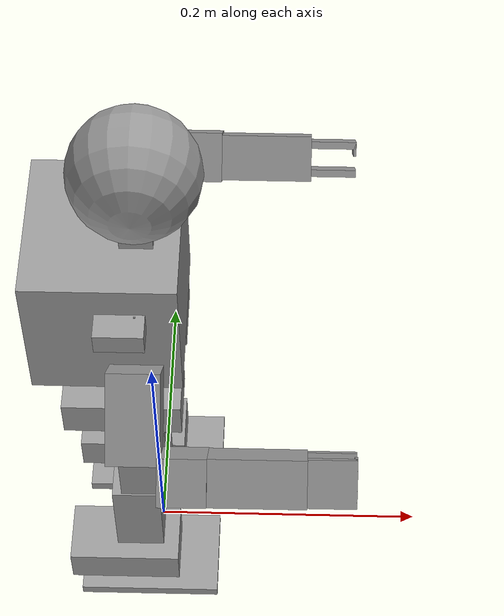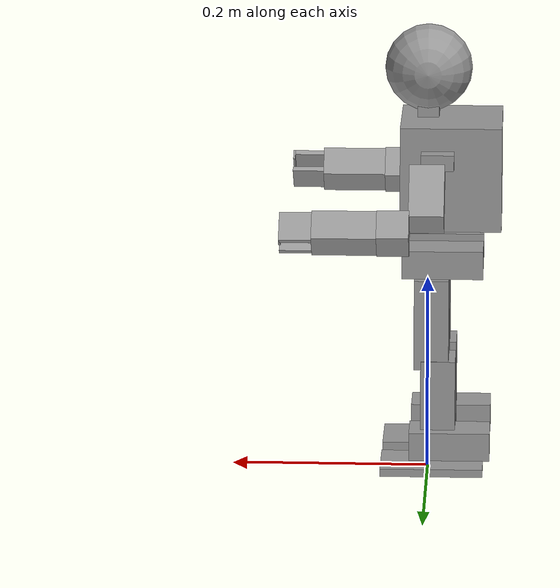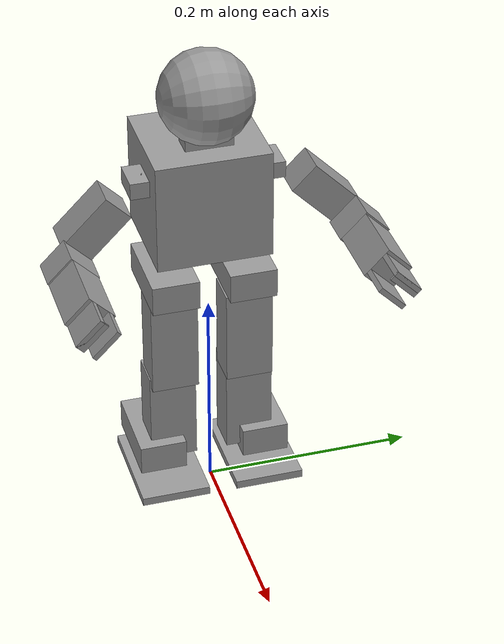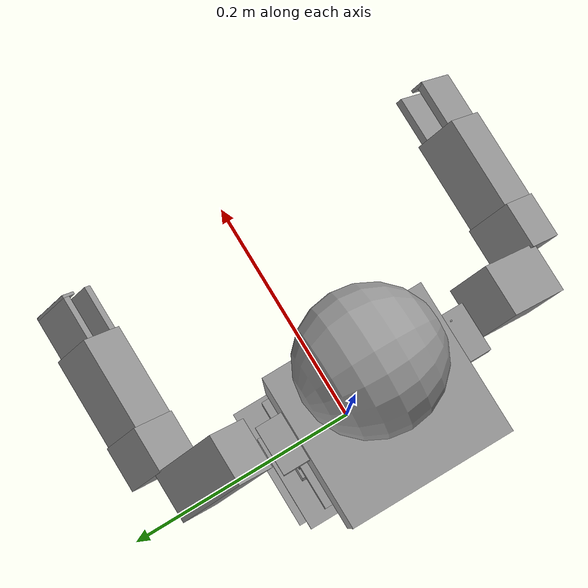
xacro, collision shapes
<?xml version="1.0"?>

<robot name="robotis_op2" xmlns:xacro="http://www.ros.org/wiki/xacro">

  <xacro:include filename="$(find robotis_op_description)/urdf/robotis_op_simple_mesh_visual_geoms.urdf.xacro" />

  <xacro:include filename="$(find robotis_op_description)/urdf/robotis_op_primitive_collision_geoms.urdf.xacro" />

  <xacro:include filename="$(find robotis_op_description)/urdf/helper_macros.urdf.xacro" />

  <xacro:include filename="$(find robotis_op_description)/urdf/materials.xacro" />

  <xacro:include filename="$(find robotis_op_description)/urdf/arm/robotis_op_arm.urdf.xacro" />
  <xacro:include filename="$(find robotis_op_description)/urdf/torso/robotis_op_torso.urdf.xacro" />
  <xacro:include filename="$(find robotis_op_description)/urdf/leg/robotis_op_leg.urdf.xacro" />
  <xacro:include filename="$(find robotis_op_description)/urdf/head/robotis_op_head.urdf.xacro" />

  <xacro:macro name="robotis_op_macro">

    <robotis_op_torso_macro />
    <robotis_op_arm_macro />
    <robotis_op_head_macro />
    <robotis_op_leg_macro />

    <gazebo>
      <plugin name="gazebo_ros_control" filename="libgazebo_ros_control.so">
        <robotNamespace>robotis_op</robotNamespace>
      </plugin>
    </gazebo>
  </xacro:macro>

  <robotis_op_macro />
</robot>

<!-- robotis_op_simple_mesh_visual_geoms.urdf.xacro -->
<robot name="robotis_op2" xmlns:xacro="http://www.ros.org/wiki/xacro">

  <xacro:include filename="$(find robotis_op_description)/urdf/constants.xacro" />

  <xacro:include filename="$(find robotis_op_description)/urdf/head/robotis_op_head_simple_mesh_visual_geoms.urdf.xacro" />
  <xacro:include filename="$(find robotis_op_description)/urdf/leg/robotis_op_leg_simple_mesh_visual_geoms.urdf.xacro" />
  <xacro:include filename="$(find robotis_op_description)/urdf/arm/robotis_op_arm_simple_mesh_visual_geoms.urdf.xacro" />
  <xacro:include filename="$(find robotis_op_description)/urdf/torso/robotis_op_torso_simple_mesh_visual_geoms.urdf.xacro" />

</robot>

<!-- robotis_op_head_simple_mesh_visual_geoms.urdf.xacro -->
<robot  name="robotis_op2" xmlns:xacro="http://www.ros.org/wiki/xacro">

<xacro:macro name="neck_visual_geom_macro">
    <visual>
      <origin xyz="0 0 0" rpy="0 0 0" />
      <geometry>
        <mesh filename="package://robotis_op_description/meshes/neck.STL"  scale="1 1 1"/>
      </geometry>
      <material name="grey"/>
    </visual>
</xacro:macro>

<xacro:macro name="head_visual_geom_macro">
    <visual>
      <origin xyz="0 0 0" rpy="0 0 0" />
      <geometry>
        <mesh filename="package://robotis_op_description/meshes/head.STL"  scale="1 1 1"/>
      </geometry>
      <material name="grey"/>
    </visual>
</xacro:macro>

<xacro:macro name="pmdcamboard_geom_macro">
</xacro:macro>

</robot>

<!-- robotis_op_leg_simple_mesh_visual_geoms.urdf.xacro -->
<robot  name="robotis_op2" xmlns:xacro="http://www.ros.org/wiki/xacro">

<xacro:macro name="pelvis_l_visual_geom_macro">
    <visual>
      <origin xyz="0 0 0" rpy="0 0 0" />
      <geometry>
        <mesh filename="package://robotis_op_description/meshes/pelvis_l.STL"  scale="1 1 1"/>
      </geometry>
       <material name="grey"/>
    </visual>
</xacro:macro>

<xacro:macro name="thigh1_l_visual_geom_macro">
    <visual>
      <origin xyz="0 0 0" rpy="0 0 0" />
      <geometry>
        <mesh filename="package://robotis_op_description/meshes/thigh1_l.STL"  scale="1 1 1"/>
      </geometry>
       <material name="grey"/>
    </visual>
</xacro:macro>

<xacro:macro name="thigh2_l_visual_geom_macro">
    <visual>
      <origin xyz="0 0 0" rpy="0 0 0" />
      <geometry>
        <mesh filename="package://robotis_op_description/meshes/thigh2_l.STL"  scale="1 1 1"/>
      </geometry>
       <material name="grey"/>
    </visual>
</xacro:macro>

<xacro:macro name="tibia_l_visual_geom_macro">
    <visual>
      <origin xyz="0 0 0" rpy="0 0 0" />
      <geometry>
        <mesh filename="package://robotis_op_description/meshes/tibia_l.STL"  scale="1 1 1"/>
      </geometry>
       <material name="grey"/>
    </visual>
</xacro:macro>

<xacro:macro name="ankle1_l_visual_geom_macro">
    <visual>
      <origin xyz="0 0 0" rpy="0 0 0" />
      <geometry>
        <mesh filename="package://robotis_op_description/meshes/ankle1_l.STL"  scale="1 1 1"/>
      </geometry>
       <material name="grey"/>
    </visual>
</xacro:macro>

<xacro:macro name="ankle2_l_visual_geom_macro">
    <visual>
      <origin xyz="0 0 0" rpy="0 0 0" />
      <geometry>
        <mesh filename="package://robotis_op_description/meshes/ankle2_l.STL"  scale="1 1 1"/>
      </geometry>
       <material name="grey"/>
    </visual>
</xacro:macro>

<xacro:macro name="pelvis_r_visual_geom_macro">
    <visual>
      <origin xyz="0 0 0" rpy="0 0 0" />
      <geometry>
        <mesh filename="package://robotis_op_description/meshes/pelvis_r.STL"  scale="1 1 1"/>
      </geometry>
       <material name="grey"/>
    </visual>
</xacro:macro>

<xacro:macro name="thigh1_r_visual_geom_macro">
    <visual>
      <origin xyz="0 0 0" rpy="0 0 0" />
      <geometry>
        <mesh filename="package://robotis_op_description/meshes/thigh1_r.STL"  scale="1 1 1"/>
      </geometry>
       <material name="grey"/>
    </visual>
</xacro:macro>

<xacro:macro name="thigh2_r_visual_geom_macro">
    <visual>
      <origin xyz="0 0 0" rpy="0 0 0" />
      <geometry>
        <mesh filename="package://robotis_op_description/meshes/thigh2_r.STL"  scale="1 1 1"/>
      </geometry>
       <material name="grey"/>
    </visual>
</xacro:macro>

<xacro:macro name="tibia_r_visual_geom_macro">
    <visual>
      <origin xyz="0 0 0" rpy="0 0 0" />
      <geometry>
        <mesh filename="package://robotis_op_description/meshes/tibia_r.STL"  scale="1 1 1"/>
      </geometry>
       <material name="grey"/>
    </visual>
</xacro:macro>

<xacro:macro name="ankle1_r_visual_geom_macro">
    <visual>
      <origin xyz="0 0 0" rpy="0 0 0" />
      <geometry>
        <mesh filename="package://robotis_op_description/meshes/ankle1_r.STL"  scale="1 1 1"/>
      </geometry>
       <material name="grey"/>
    </visual>
</xacro:macro>

<xacro:macro name="ankle2_r_visual_geom_macro">
    <visual>
      <origin xyz="0 0 0" rpy="0 0 0" />
      <geometry>
        <mesh filename="package://robotis_op_description/meshes/ankle2_r.STL"  scale="1 1 1"/>
      </geometry>
       <material name="grey"/>
    </visual>
</xacro:macro>

</robot>

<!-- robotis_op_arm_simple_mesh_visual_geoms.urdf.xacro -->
<robot  name="robotis_op2" xmlns:xacro="http://www.ros.org/wiki/xacro">

<xacro:macro name="back_l_visual_geom_macro">
    <visual>
      <origin xyz="0.0 0.0 0.0" rpy="0 0 0" />
      <geometry>
        <box size="0.001 0.001 0.001"  scale="1 1 1"/>
      </geometry>
      <material name="grey"/>
    </visual>
</xacro:macro>

<xacro:macro name="shoulder_l_visual_geom_macro">
    <visual>
      <origin xyz="0 0 0" rpy="0 0 0" />
      <geometry>
        <mesh filename="package://robotis_op_description/meshes/shoulder_l.STL"  scale="1 1 1"/>
      </geometry>
      <material name="grey"/>
    </visual>
</xacro:macro>

<xacro:macro name="arm_high_l_visual_geom_macro">
    <visual>
      <origin xyz="0 0 0" rpy="0 0 0" />
      <geometry>
        <mesh filename="package://robotis_op_description/meshes/arm_high_l.STL"  scale="1 1 1"/>
      </geometry>
      <material name="grey"/>
    </visual>
</xacro:macro>

<xacro:macro name="arm_low_l_visual_geom_macro">
    <visual>
      <origin xyz="0.016 0.016 0" rpy="0 0 0" />
      <geometry>
        <box size="0.032 0.032 0.035" />
      </geometry>
      <material name="grey"/>
    </visual>
</xacro:macro>

<xacro:macro name="arm_gripper_fix_l_visual_geom_macro">
    <visual>
      <origin xyz="0.016 0 0" rpy="0 0 0" />
      <geometry>
        <box size="0.064 0.032 0.032" />
      </geometry>
       <material name="grey"/>
    </visual>
</xacro:macro>

<xacro:macro name="arm_gripper_fix_dummy_l_visual_geom_macro">
    <visual>
      <origin xyz="0 0 0" rpy="0 0 0" />
      <geometry>
        <box size="0.032 0.005 0.032" />
      </geometry>
       <material name="grey"/>
    </visual>
</xacro:macro>

<xacro:macro name="arm_gripper_mov_l_visual_geom_macro">
    <visual name="VIS_MP_ARM_GRIPPER_MOV_L">
      <origin xyz="0.016 0 0" rpy="0 0 0" />
      <geometry>
        <box size="0.032 0.005 0.032" />
      </geometry>
       <material name="grey"/>
    </visual>
    <visual name="VIS_MP_ARM_GRIPPER_MOV_EXT_L">
      <origin xyz="0.031 -0.0025 0" rpy="0 0 0" />
      <geometry>
        <box size="0.002 0.01 0.032" />
      </geometry>
       <material name="grey"/>
    </visual>
</xacro:macro>

<xacro:macro name="back_r_visual_geom_macro">
    <visual>
      <origin xyz="0.0 0.0 0.0" rpy="0 0 0" />
      <geometry>
        <box size="0.001 0.001 0.001" />
      </geometry>
       <material name="grey"/>
    </visual>
</xacro:macro>

<xacro:macro name="shoulder_r_visual_geom_macro">
    <visual>
      <origin xyz="0 0 0" rpy="0 0 0" />
      <geometry>
        <mesh filename="package://robotis_op_description/meshes/shoulder_r.STL"  scale="1 1 1"/>
      </geometry>
       <material name="grey"/>
    </visual>
</xacro:macro>

<xacro:macro name="arm_high_r_visual_geom_macro">
    <visual>
      <origin xyz="0 0 0" rpy="0 0 0" />
      <geometry>
        <mesh filename="package://robotis_op_description/meshes/arm_high_r.STL"  scale="1 1 1"/>
      </geometry>
       <material name="grey"/>
    </visual>
</xacro:macro>

<xacro:macro name="arm_low_r_visual_geom_macro">
    <visual>
      <origin xyz="0.016 -0.016 0" rpy="0 0 0" />
      <geometry>
        <box size="0.032 0.032 0.035" />
      </geometry>
       <material name="grey"/>
    </visual>
</xacro:macro>

<xacro:macro name="arm_gripper_fix_r_visual_geom_macro">
    <visual>
      <origin xyz="0.016 0 0" rpy="0 0 0" />
      <geometry>
        <box size="0.064 0.032 0.032" />
      </geometry>
       <material name="grey"/>
    </visual>
</xacro:macro>

<xacro:macro name="arm_gripper_fix_dummy_r_visual_geom_macro">
    <visual>
      <origin xyz="0 0 0" rpy="0 0 0" />
      <geometry>
        <box size="0.032 0.005 0.032" />
      </geometry>
       <material name="grey"/>
    </visual>
</xacro:macro>

<xacro:macro name="arm_gripper_mov_r_visual_geom_macro">
    <visual name="VIS_MP_ARM_GRIPPER_MOV_R">
      <origin xyz="0.016 0 0" rpy="0 0 0" />
      <geometry>
        <box size="0.032 0.005 0.032" />
      </geometry>
       <material name="grey"/>
    </visual>
    <visual name="VIS_MP_ARM_GRIPPER_MOV_EXT_R">
      <origin xyz="0.031 -0.0025 0" rpy="0 0 0" />
      <geometry>
        <box size="0.002 0.01 0.032" />
      </geometry>
       <material name="grey"/>
    </visual>
</xacro:macro>

</robot>

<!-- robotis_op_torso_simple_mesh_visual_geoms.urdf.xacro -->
<robot  name="robotis_op2" xmlns:xacro="http://www.ros.org/wiki/xacro">

<xacro:macro name="body_visual_geom_macro">
    <visual>
      <origin xyz="0 0 0"
	      rpy="0 0 0" />
      <geometry>
        <mesh filename="package://robotis_op_description/meshes/body.STL"  scale="1 1 1"/>
      </geometry>
      <material name="grey"/>
    </visual>
</xacro:macro>

</robot>

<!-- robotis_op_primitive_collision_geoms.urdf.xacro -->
<robot name="robotis_op2" xmlns:xacro="http://www.ros.org/wiki/xacro">

  <xacro:include filename="$(find robotis_op_description)/urdf/constants.xacro" />

  <xacro:include filename="$(find robotis_op_description)/urdf/head/robotis_op_head_primitive_collision_geoms.urdf.xacro" />
  <xacro:include filename="$(find robotis_op_description)/urdf/leg/robotis_op_leg_primitive_collision_geoms.urdf.xacro" />
  <xacro:include filename="$(find robotis_op_description)/urdf/arm/robotis_op_arm_primitive_collision_geoms.urdf.xacro" />
  <xacro:include filename="$(find robotis_op_description)/urdf/torso/robotis_op_torso_primitive_collision_geoms.urdf.xacro" />

</robot>

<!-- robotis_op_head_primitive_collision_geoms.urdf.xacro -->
<robot  name="robotis_op2" xmlns:xacro="http://www.ros.org/wiki/xacro">

<xacro:macro name="neck_collision_geom_macro">
    <collision>
      <origin xyz="0.0 -0.0 0.01525" />
      <geometry>
        <box size="0.045 0.022 0.0325" />
      </geometry>
    </collision>
</xacro:macro>

<xacro:macro name="head_collision_geom_macro">
    <collision>
      <origin xyz="0.000064 -0.018565 -0.0" />
      <geometry>
        <sphere radius="0.044" />
      </geometry>
    </collision>
</xacro:macro>

<xacro:macro name="pmdcamboard_geom_macro">
</xacro:macro>

</robot>

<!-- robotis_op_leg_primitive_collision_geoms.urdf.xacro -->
<robot  name="robotis_op2" xmlns:xacro="http://www.ros.org/wiki/xacro">

<xacro:macro name="pelvis_l_collision_geom_macro">
    <collision>
      <origin xyz="0.000000 -0.010580 0.028437" />
      <geometry>
        <box size="0.045 0.08175 0.028652" />
      </geometry>
    </collision>
</xacro:macro>

<xacro:macro name="thigh1_l_collision_geom_macro">
    <collision>
      <origin xyz="0.000079 0.018242 0.013873" />
      <geometry>
        <box size="0.001 0.001 0.001"/>
      </geometry>
    </collision>
</xacro:macro>

<xacro:macro name="thigh2_l_collision_geom_macro">
    <collision>
      <origin xyz="-0.062965 -0.000323 0.000692" />
      <geometry>
        <box size="0.093 0.035 0.045"/>
      </geometry>
    </collision>
</xacro:macro>

<xacro:macro name="tibia_l_collision_geom_macro">
    <collision>
      <origin xyz="-0.053955 0.006548 -0.000592" />
      <geometry>
        <box size="0.093 0.035 0.045"/>
      </geometry>
    </collision>
</xacro:macro>

<xacro:macro name="ankle1_l_collision_geom_macro">
    <collision>
      <origin xyz="-0.000214 -0.018536 0.013873" />
      <geometry>
        <box size="0.028652 0.08175 0.045"/>
      </geometry>
    </collision>
</xacro:macro>

<xacro:macro name="ankle2_l_collision_geom_macro">
    <collision>
      <origin xyz="-0.025995 -0.009506 -0.000503" />
      <geometry>
        <box size="0.008 0.066 0.104"/>
      </geometry>
    </collision>
</xacro:macro>

<xacro:macro name="pelvis_r_collision_geom_macro">
    <collision>
      <origin xyz="0.000000 0.010580 0.028437" />
      <geometry>
        <box size="0.045 0.08175 0.028652" />
      </geometry>
    </collision>
</xacro:macro>

<xacro:macro name="thigh1_r_collision_geom_macro">
    <collision>
      <origin xyz="0.000079 -0.018242 0.0138735" />
      <geometry>
        <box size="0.001 0.001 0.001"/>
      </geometry>
    </collision>
</xacro:macro>

<xacro:macro name="thigh2_r_collision_geom_macro">
    <collision>
      <origin xyz="0.062965 -0.000323 0.000692" />
      <geometry>
        <box size="0.093 0.035 0.045"/>
      </geometry>
    </collision>
</xacro:macro>

<xacro:macro name="tibia_r_collision_geom_macro">
    <collision>
      <origin xyz="0.053955 0.006548 -0.000592" />
      <geometry>
        <box size="0.093 0.035 0.045"/>
      </geometry>
    </collision>
</xacro:macro>

<xacro:macro name="ankle1_r_collision_geom_macro">
    <collision>
      <origin xyz="-0.000214 -0.018536 0.013873" />
      <geometry>
        <box size="0.028652 0.08175 0.045"/>
      </geometry>
    </collision>
</xacro:macro>

<xacro:macro name="ankle2_r_collision_geom_macro">
    <collision>
      <origin xyz="0.025995 -0.009506 -0.000503" />
      <geometry>
        <box size="0.008 0.066 0.104"/>
      </geometry>
    </collision>
</xacro:macro>

</robot>

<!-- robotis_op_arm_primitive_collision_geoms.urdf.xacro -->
<robot  name="robotis_op2" xmlns:xacro="http://www.ros.org/wiki/xacro">

<xacro:macro name="back_l_collision_geom_macro">
    <collision>
      <origin xyz="-0.0031158909 0.020443695 -0.019663084" />
      <geometry>
        <box size="0.001 0.001 0.001"  scale="1 1 1"/>
      </geometry>
    </collision>
</xacro:macro>

<xacro:macro name="shoulder_l_collision_geom_macro">
    <collision>
      <origin xyz="-0.013522619 -0.010264050 0.0013935747" />
      <geometry>
        <box size="0.016 0.033 0.02165" />
      </geometry>
    </collision>
</xacro:macro>

<xacro:macro name="arm_high_l_collision_geom_macro">
    <collision>
      <origin xyz="-0.036239 0.000734 0.000660" />
      <geometry>
        <box size="0.06 0.032 0.035" />
      </geometry>
    </collision>
</xacro:macro>

<xacro:macro name="arm_low_l_collision_geom_macro">
    <collision>
      <origin xyz="0.016 0.016 0" rpy="0 0 0" />
      <geometry>
        <box size="0.032 0.032 0.035" />
      </geometry>
    </collision>
</xacro:macro>

<xacro:macro name="arm_gripper_fix_l_collision_geom_macro">
    <collision>
      <origin xyz="0.016 0 0" rpy="0 0 0" />
      <geometry>
        <box size="0.064 0.032 0.032" />
      </geometry>
    </collision>
</xacro:macro>

<xacro:macro name="arm_gripper_fix_dummy_l_collision_geom_macro">
    <collision>
      <geometry>
        <box size="0.032 0.005 0.032" />
      </geometry>
    </collision>
</xacro:macro>

<xacro:macro name="arm_gripper_mov_l_collision_geom_macro">
    <collision name="COL_MP_ARM_GRIPPER_MOV_L">
      <origin xyz="0.016 0 0" rpy="0 0 0" />
      <geometry>
        <box size="0.032 0.005 0.032" />
      </geometry>
    </collision>
    <collision name="COL_MP_ARM_GRIPPER_MOV_EXT_L">
      <origin xyz="0.031 -0.0025 0" rpy="0 0 0" />
      <geometry>
        <box size="0.002 0.01 0.032" />
      </geometry>
    </collision>
</xacro:macro>

<xacro:macro name="back_r_collision_geom_macro">
    <collision>
      <geometry>
        <box size="0.001 0.001 0.001" />
      </geometry>
    </collision>
</xacro:macro>

<xacro:macro name="shoulder_r_collision_geom_macro">
    <collision>
      <origin xyz="-0.013523 0.010264 0.001394" />
      <geometry>
        <box size="0.016 0.033 0.02165" />
      </geometry>
    </collision>
</xacro:macro>

<xacro:macro name="arm_high_r_collision_geom_macro">
    <collision>
      <origin xyz="-0.036239 0.000734 -0.000660" />
      <geometry>
        <box size="0.06 0.032 0.035"/>
      </geometry>
    </collision>
</xacro:macro>

<xacro:macro name="arm_low_r_collision_geom_macro">
    <collision>
      <origin xyz="0.016 -0.016 0" rpy="0 0 0" />
      <geometry>
        <box size="0.032 0.032 0.035" />
      </geometry>
    </collision>
</xacro:macro>

<xacro:macro name="arm_gripper_fix_r_collision_geom_macro">
    <collision>
      <origin xyz="0.016 0 0" rpy="0 0 0" />
      <geometry>
        <box size="0.064 0.032 0.032" />
      </geometry>
    </collision>
</xacro:macro>

<xacro:macro name="arm_gripper_fix_dummy_r_collision_geom_macro">
    <collision>
      <geometry>
        <box size="0.032 0.005 0.032" />
      </geometry>
    </collision>
</xacro:macro>

<xacro:macro name="arm_gripper_mov_r_collision_geom_macro">
    <collision name="COL_MP_ARM_GRIPPER_MOV_R">
      <origin xyz="0.016 0 0" rpy="0 0 0" />
      <geometry>
        <box size="0.032 0.005 0.032" />
      </geometry>
    </collision>
    <collision name="COL_MP_ARM_GRIPPER_MOV_EXT_R">
      <origin xyz="0.031 -0.0025 0" rpy="0 0 0" />
      <geometry>
        <box size="0.002 0.01 0.032" />
      </geometry>
    </collision>
</xacro:macro>

</robot>

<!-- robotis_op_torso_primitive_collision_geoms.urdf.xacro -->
<robot  name="robotis_op2" xmlns:xacro="http://www.ros.org/wiki/xacro">

<xacro:macro name="body_collision_geom_macro">
    <collision>
      <origin xyz="-0.0235 0 -0.03525" rpy="0 0 0" />
      <geometry>
        <box size="0.102 0.109 0.106" />
      </geometry>
    </collision>
</xacro:macro>

</robot>

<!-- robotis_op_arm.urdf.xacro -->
<!-- Set the robot's name -->
<robot  name="robotis_op2" xmlns:xacro="http://www.ros.org/wiki/xacro">

  <xacro:macro name="robotis_op_arm_macro">

  <link name="MP_BACK_L">
    <inertial>
      <origin xyz="-0.0031158909 0.020443695 -0.019663084" />
      <mass value="0.010"/>
      <inertia ixx="3.1081800"  ixy="-0.25460189"  ixz="2.0318174" iyy="6.3787776" iyz="0.16417863" izz="5.3316425" />
    </inertial>
    <xacro:back_l_collision_geom_macro />
    <xacro:back_l_visual_geom_macro />
  </link>

  <link name="MP_SHOULDER_L">
    <inertial>
      <origin xyz="-0.013522619 0.010264050 0.0013935747" />
      <mass value="0.025913024"/>
      <inertia ixx="0.0097758165"  ixy="0.0016911839"  ixz="-0.00045174329" iyx="0.0016911839" iyy="0.010511104" iyz="0.00033406955" izx="-0.00045174329" izy="0.00033406955" izz="0.005476798" />
    </inertial>
    <xacro:shoulder_l_collision_geom_macro />
    <xacro:shoulder_l_visual_geom_macro />
  </link>

  <link name="MP_ARM_HIGH_L" >
    <inertial>
      <origin xyz="-0.036239 0.000734 0.000660" />
      <mass value="0.16837715"/>
      <inertia ixx="0.12202839"  ixy="-0.0020812626"  ixz="-0.00088143449" iyx="-0.0020812626" iyy="0.038088441" iyz="0.0018251448" izx="-0.00088143449" izy="0.0018251448" izz="0.11340830" />
    </inertial>
    <xacro:arm_high_l_collision_geom_macro />
    <xacro:arm_high_l_visual_geom_macro />
  </link>

  <link name="MP_ARM_LOW_L" >
    <inertial>
      <origin xyz="0.000000 0.000000 0.000000"/>
      <mass value="0.059288504"/>
      <inertia ixx="0.086855267"  ixy="0.0053020311"  ixz="0.00043636051" iyx="0.0053020311" iyy="0.021192085" iyz="-0.0064855932" izx="0.00043636051" izy="-0.0064855932" izz="0.086845450" />
    </inertial>
    <xacro:arm_low_l_collision_geom_macro />
    <xacro:arm_low_l_visual_geom_macro />
  </link>

 <link name="MP_ARM_GRIPPER_FIX_L" >
    <inertial>
      <origin xyz="0.045838 -0.013490 0.006666"/>
      <mass value="0.010"/>
      <inertia ixx="0.12202839"  ixy="-0.0020812626"  ixz="-0.00088143449" iyx="-0.0020812626" iyy="0.038088441" iyz="0.0018251448" izx="-0.00088143449" izy="0.0018251448" izz="0.11340830" />
    </inertial>
    <xacro:arm_gripper_fix_l_collision_geom_macro />
    <xacro:arm_gripper_fix_l_visual_geom_macro />
  </link>

  <link name="MP_ARM_GRIPPER_FIX_DUMMY_L" >
    <inertial>
      <origin xyz="0 0 0"/>
      <mass value="0.010"/>
      <inertia ixx="0.12202839"  ixy="-0.0020812626"  ixz="-0.00088143449" iyx="-0.0020812626" iyy="0.038088441" iyz="0.0018251448" izx="-0.00088143449" izy="0.0018251448" izz="0.11340830" />
    </inertial>
    <xacro:arm_gripper_fix_dummy_l_collision_geom_macro />
    <xacro:arm_gripper_fix_dummy_l_visual_geom_macro />
  </link>

  <link name="MP_ARM_GRIPPER_MOV_L" >
    <inertial>
      <origin xyz="0.000000 0.000000 0.000000"/>
      <mass value="0.010"/>
      <inertia ixx="0.12202839"  ixy="-0.0020812626"  ixz="-0.00088143449" iyx="-0.0020812626" iyy="0.038088441" iyz="0.0018251448" izx="-0.00088143449" izy="0.0018251448" izz="0.11340830" />
    </inertial>
    <xacro:arm_gripper_mov_l_collision_geom_macro />
    <xacro:arm_gripper_mov_l_visual_geom_macro />
  </link>

  <link name="MP_BACK_R">
    <inertial>
      <origin xyz="0 0 0" />
      <mass value="0.010"/>
      <inertia ixx="3.1081800"  ixy="-0.25460189"  ixz="2.0318174" iyy="6.3787776" iyz="0.16417863" izz="5.3316425" />
    </inertial>
    <xacro:back_r_collision_geom_macro />
    <xacro:back_r_visual_geom_macro />
  </link>

  <link name="MP_SHOULDER_R" >
    <inertial>
      <origin xyz="-0.013523 0.010264 0.001394" />
      <mass value="0.025913024"/>
      <inertia ixx="0.0097758165"  ixy="0.0016911839"  ixz="-0.00045174329" iyx="0.0016911839" iyy="0.010511104" iyz="0.00033406955" izx="-0.00045174329" izy="0.00033406955" izz="0.005476798" />
    </inertial>
    <xacro:shoulder_r_collision_geom_macro />
    <xacro:shoulder_r_visual_geom_macro />
  </link>

  <link name="MP_ARM_HIGH_R" >
    <inertial>
      <origin xyz="-0.036239 0.000734 -0.000660" />
      <mass value="0.16837715"/>
      <inertia ixx="0.12202839"  ixy="-0.0020812626"  ixz="-0.00088143449" iyx="-0.0020812626" iyy="0.038088441" iyz="0.0018251448" izx="-0.00088143449" izy="0.0018251448" izz="0.11340830" />
    </inertial>
    <xacro:arm_high_r_collision_geom_macro />
    <xacro:arm_high_r_visual_geom_macro />
  </link>

  <link name="MP_ARM_LOW_R" >
    <inertial>
      <origin xyz="0.000000 0.000000 0.000000" />
      <mass value="0.059288504"/>
      <inertia ixx="0.086855267"  ixy="0.0053020311"  ixz="0.00043636051" iyx="0.0053020311" iyy="0.021192085" iyz="-0.0064855932" izx="0.00043636051" izy="-0.0064855932" izz="0.086845450" />
    </inertial>
    <xacro:arm_low_r_collision_geom_macro />
    <xacro:arm_low_r_visual_geom_macro />
  </link>

  <link name="MP_ARM_GRIPPER_FIX_R" >
    <inertial>
      <origin xyz="0 0 0"/>
      <mass value="0.010"/>
      <inertia ixx="0.12202839"  ixy="-0.0020812626"  ixz="-0.00088143449" iyx="-0.0020812626" iyy="0.038088441" iyz="0.0018251448" izx="-0.00088143449" izy="0.0018251448" izz="0.11340830" />
    </inertial>
    <xacro:arm_gripper_fix_r_collision_geom_macro />
    <xacro:arm_gripper_fix_r_visual_geom_macro />
  </link>

  <link name="MP_ARM_GRIPPER_FIX_DUMMY_R" >
    <inertial>
      <origin xyz="0 0 0"/>
      <mass value="0.010"/>
      <inertia ixx="0.12202839"  ixy="-0.0020812626"  ixz="-0.00088143449" iyx="-0.0020812626" iyy="0.038088441" iyz="0.0018251448" izx="-0.00088143449" izy="0.0018251448" izz="0.11340830" />
    </inertial>
    <xacro:arm_gripper_fix_dummy_r_collision_geom_macro />
    <xacro:arm_gripper_fix_dummy_r_visual_geom_macro />
  </link>

  <link name="MP_ARM_GRIPPER_MOV_R" >
    <inertial>
      <origin xyz="0.000000 0.000000 0.000000"/>
      <mass value="0.010"/>
      <inertia ixx="0.12202839"  ixy="-0.0020812626"  ixz="-0.00088143449" iyx="-0.0020812626" iyy="0.038088441" iyz="0.0018251448" izx="-0.00088143449" izy="0.0018251448" izz="0.11340830" />
    </inertial>
    <xacro:arm_gripper_mov_r_collision_geom_macro />
    <xacro:arm_gripper_mov_r_visual_geom_macro />
  </link>

  <joint name="j_back_l" type="fixed">
    <parent link="MP_BODY"/>
    <child link="MP_BACK_L"/>
    <origin xyz="0 0.06035 0" rpy="-1.5707963 0 0" />
    <limit effort="2.8" velocity="5.6548668" lower="-2.6179939" upper="2.6179939" />
  </joint>

  <joint name="j_shoulder_l" type="revolute">
    <parent link="MP_BACK_L"/>
    <child link="MP_SHOULDER_L"/>
    <origin xyz="0 0 0" rpy="0 0 -1.5707963" />
    <axis xyz="0 0 1" />
    <limit effort="2.8" velocity="5.6548668" lower="-2.6179939" upper="2.6179939" />
  </joint>

  <joint name="j_high_arm_l" type="revolute">
    <parent link="MP_SHOULDER_L"/>
    <child link="MP_ARM_HIGH_L"/>
    <origin xyz="-0.016 0 0.02165" rpy="1.5707963 0.78539815 0" />
    <axis xyz="0 0 1" />
    <limit effort="2.8" velocity="5.648668" lower="-2.6179939" upper="2.6179939" />
  </joint>

  <joint name="j_low_arm_l" type="revolute">
    <parent link="MP_ARM_HIGH_L"/>
    <child link="MP_ARM_LOW_L"/>
    <origin xyz="-0.06 0 -0.016" rpy="-1.5707963 1.5707963 0" />
    <axis xyz="0 0 1" />
    <limit effort="2.8" velocity="5.6548668" lower="-2.6179939" upper="2.6179939" />
  </joint>

  <joint name="j_wrist_l" type="revolute">
    <parent link="MP_ARM_LOW_L"/>
    <child link="MP_ARM_GRIPPER_FIX_L"/>
    <origin xyz="0.048 0.016 0" rpy="1.5707963 0 0" />
    <axis xyz="0 0 1" />
    <limit effort="2.8" velocity="5.6548668" lower="-2.6179939" upper="2.6179939" />
  </joint>

  <joint name="j_wrist_dummy_l" type="fixed">
    <parent link="MP_ARM_GRIPPER_FIX_L"/>
    <child link="MP_ARM_GRIPPER_FIX_DUMMY_L"/>
    <origin xyz="0.064 -0.01 0" rpy="0 0 0" />
  </joint>

  <joint name="j_gripper_l" type="revolute">
    <parent link="MP_ARM_GRIPPER_FIX_L"/>
    <child link="MP_ARM_GRIPPER_MOV_L"/>
    <origin xyz="0.048 0.01 0" rpy="0 0 0" />
    <axis xyz="0 0 1" />
    <limit effort="2.8" velocity="5.6548668" lower="-2.6179939" upper="2.6179939" />
  </joint>

  <joint name="j_back_r" type="fixed">
    <parent link="MP_BODY"/>
    <child link="MP_BACK_R"/>
    <origin xyz="0 -0.06035 0" rpy="1.5707963 0 0" />
    <limit effort="2.8" velocity="5.6548668" lower="-2.6179939" upper="2.6179939" />
  </joint>

  <joint name="j_shoulder_r" type="revolute">
    <parent link="MP_BACK_R"/>
    <child link="MP_SHOULDER_R"/>
    <origin xyz="0 0 0" rpy="0 0 1.5707963" />
    <axis xyz="0 0 1" />
    <limit effort="2.8" velocity="5.6548668" lower="-2.6179939" upper="2.6179939" />
  </joint>

  <joint name="j_high_arm_r" type="revolute">
    <parent link="MP_SHOULDER_R"/>
    <child link="MP_ARM_HIGH_R"/>
    <origin xyz="-0.016 0 0.02165" rpy="-1.5707963 0.78539815 0" />
    <axis xyz="0 0 1" />
    <limit effort="2.8" velocity="5.648668" lower="-2.6179939" upper="2.6179939" />
  </joint>

  <joint name="j_low_arm_r" type="revolute">
    <parent link="MP_ARM_HIGH_R"/>
    <child link="MP_ARM_LOW_R"/>
    <origin xyz="-0.06 0 -0.016" rpy="1.5707963 1.5707963 0" />
    <axis xyz="0 0 1" />
    <limit effort="2.8" velocity="5.6548668" lower="-2.6179939" upper="2.6179939" />
  </joint>

  <joint name="j_wrist_r" type="revolute">
    <parent link="MP_ARM_LOW_R"/>
    <child link="MP_ARM_GRIPPER_FIX_R"/>
    <origin xyz="0.048 -0.016 0" rpy="1.5707963 0 0" />
    <axis xyz="0 0 1" />
    <limit effort="2.8" velocity="5.6548668" lower="-2.6179939" upper="2.6179939" />
  </joint>

  <joint name="j_wrist_dummy_r" type="fixed">
    <parent link="MP_ARM_GRIPPER_FIX_R"/>
    <child link="MP_ARM_GRIPPER_FIX_DUMMY_R"/>
    <origin xyz="0.064 -0.01 0" rpy="0 0 0" />
  </joint>

  <joint name="j_gripper_r" type="revolute">
    <parent link="MP_ARM_GRIPPER_FIX_R"/>
    <child link="MP_ARM_GRIPPER_MOV_R"/>
    <origin xyz="0.048 0.01 0" rpy="0 0 0" />
    <axis xyz="0 0 1" />
    <limit effort="2.8" velocity="5.6548668" lower="-2.6179939" upper="2.6179939" />
  </joint>

  <joint_transmission_macro joint_name="j_shoulder_l"/>
  <joint_transmission_macro joint_name="j_high_arm_l"/>
  <joint_transmission_macro joint_name="j_low_arm_l"/>
  <joint_transmission_macro joint_name="j_wrist_l"/>
  <joint_transmission_macro joint_name="j_gripper_l"/>

  <joint_transmission_macro joint_name="j_shoulder_r"/>
  <joint_transmission_macro joint_name="j_high_arm_r"/>
  <joint_transmission_macro joint_name="j_low_arm_r"/>
  <joint_transmission_macro joint_name="j_wrist_r"/>
  <joint_transmission_macro joint_name="j_gripper_r"/>

  </xacro:macro>
</robot>

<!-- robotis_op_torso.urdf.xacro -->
<!-- Set the robot's name -->
<robot  name="robotis_op2" xmlns:xacro="http://www.ros.org/wiki/xacro">

  <xacro:macro name="robotis_op_torso_macro">

  <link name="base_link"/>

  <link name="MP_BODY">
    <inertial>
      <origin xyz="-0.003053 -0.038651 -0.019268" />
      <mass value="0.97559947"/>
      <inertia ixx="3.1081800"  ixy="-0.25460189"  ixz="2.0318174" iyy="6.3787776" iyz="0.16417863" izz="5.3316425" />
    </inertial>
    <body_collision_geom_macro />
    <body_visual_geom_macro />
  </link>

  <joint name="base_link_to_body" type="fixed">
    <parent link="base_link"/>
    <child link="MP_BODY"/>
    <origin xyz="0 0 0.35" rpy="0 0 0"/>
  </joint>

      <gazebo>
        <plugin filename="libhector_gazebo_ros_imu.so" name="gazebo_ros_imu">
          <bodyName>MP_BODY</bodyName>
          <updateRate>50</updateRate>
          <serviceName>/robotis_op/imu_service</serviceName>
          <topicName>/robotis_op/imu</topicName>
          <gaussianNoise>0</gaussianNoise>
          <xyzOffset>0 0 0</xyzOffset>
          <rpyOffset>0 0 -0.703220730592</rpyOffset>
        </plugin>
      </gazebo>

  </xacro:macro>
</robot>

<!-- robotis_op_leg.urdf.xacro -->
<!-- Set the robot's name -->
<robot  name="robotis_op2" xmlns:xacro="http://www.ros.org/wiki/xacro">

  <xacro:macro name="robotis_op_leg_macro">

 <link name="MP_PELVIS_L" >
    <inertial>
      <origin xyz="0.000000 0.000480 0.018437" />
      <mass value="0.167"/>
      <inertia ixx="0.12259691"  ixy="0.00071127469"  ixz="0.00081143913" iyx="0.00071127469" iyy="0.11066637" iyz="-0.0071635476" izx="0.00081143913" izy="-0.0071635476" izz="0.041877668" />
    </inertial>
    <pelvis_l_collision_geom_macro />
    <pelvis_l_visual_geom_macro />
  </link>

  <link name="MP_THIGH1_L" >
    <inertial>
      <origin xyz="0.000079 0.018242 0.013873" />
      <mass value="0.11904336"/>
      <inertia ixx="0.097950272"  ixy="0.0012119368"  ixz="-0.00021223016" iyx="0.00122119368" iyy="0.032848287" iyz="-0.0019474021" izx="-0.00021223016" izy="-0.0019474021" izz="0.11493509" />
    </inertial>
    <thigh1_l_collision_geom_macro />
    <thigh1_l_visual_geom_macro />
  </link>

  <link name="MP_THIGH2_L" >
    <inertial>
      <origin xyz="-0.062965 -0.000323 0.000692" />
      <mass value="0.11904336"/>
      <inertia ixx="0.097950272"  ixy="0.0012119368"  ixz="-0.00021223016" iyx="0.00122119368" iyy="0.032848287" iyz="-0.0019474021" izx="-0.00021223016" izy="-0.0019474021" izz="0.11493509" />
    </inertial>
    <thigh2_l_collision_geom_macro />
    <thigh2_l_visual_geom_macro />
  </link>

  <link name="MP_TIBIA_L" >
    <inertial>
      <origin xyz="-0.053955 0.006548 -0.000592" />
      <mass value="0.070309794"/>
      <inertia ixx="0.093369608"  ixy="-0.00093567395"  ixz="-0.00023992085" iyx="-0.00093567395" iyy="0.046295534" iyz="-0.012858493" izx="-0.00023992085" izy="-0.012858493" izz="0.11351516" />
    </inertial>
    <tibia_l_collision_geom_macro />
    <tibia_l_visual_geom_macro />
  </link>

  <link name="MP_ANKLE1_L" >
    <inertial>
      <origin xyz="-0.000214 -0.018536 0.013873" />
      <mass value="0.16710792"/>
      <inertia ixx="0.12079175"  ixy="-0.00079781067"  ixz="-0.00039322246" iyx="-0.00079781067" iyy="0.10885465" iyz="0.0070770117" izx="-0.00039322246" izy="0.0070770117" izz="0.041871103" />
    </inertial>
    <ankle1_l_collision_geom_macro />
    <ankle1_l_visual_geom_macro />
  </link>

  <link name="MP_ANKLE2_L" >
    <inertial>
      <origin xyz="-0.025995 -0.009506 -0.000503" />
      <mass value="0.0794462"/>
      <inertia ixx="0.12079175"  ixy="-0.00079781067"  ixz="-0.00039322246" iyx="-0.00079781067" iyy="0.10885465" iyz="0.0070770117" izx="-0.00039322246" izy="0.0070770117" izz="0.041871103" />
    </inertial>
    <ankle2_l_collision_geom_macro />
    <ankle2_l_visual_geom_macro />
  </link>

  <link name="MP_PELVIS_R" >
    <inertial>
      <origin xyz="0.000000 0.000480 0.018437" />
      <mass value="0.197"/>
      <inertia ixx="0.12259691"  ixy="0.00071127469"  ixz="0.00081143913" iyx="0.00071127469" iyy="0.11066637" iyz="-0.0071635476" izx="0.00081143913" izy="-0.0071635476" izz="0.041877668" />
    </inertial>
    <pelvis_r_collision_geom_macro />
    <pelvis_r_visual_geom_macro />
  </link>

  <link name="MP_THIGH1_R" >
    <inertial>
      <origin xyz="0.000079 -0.018242 0.0138735" />
      <mass value="0.11904336"/>
      <inertia ixx="0.097950272"  ixy="0.0012119368"  ixz="-0.00021223016" iyx="0.00122119368" iyy="0.032848287" iyz="-0.0019474021" izx="-0.00021223016" izy="-0.0019474021" izz="0.11493509" />
    </inertial>
    <thigh1_r_collision_geom_macro />
    <thigh1_r_visual_geom_macro />
  </link>

  <link name="MP_THIGH2_R" >
    <inertial>
      <origin xyz="0.062965 -0.000323 0.000692" />
      <mass value="0.11904336"/>
      <inertia ixx="0.097950272"  ixy="0.0012119368"  ixz="-0.00021223016" iyx="0.00122119368" iyy="0.032848287" iyz="-0.0019474021" izx="-0.00021223016" izy="-0.0019474021" izz="0.11493509" />
    </inertial>
    <thigh2_r_collision_geom_macro />
    <thigh2_r_visual_geom_macro />
  </link>

  <link name="MP_TIBIA_R" >
    <inertial>
      <origin xyz="0.053955 0.006548 -0.000592" />
      <mass value="0.070309794"/>
      <inertia ixx="0.093369608"  ixy="-0.00093567395"  ixz="-0.00023992085" iyx="-0.00093567395" iyy="0.046295534" iyz="-0.012858493" izx="-0.00023992085" izy="-0.012858493" izz="0.11351516" />
    </inertial>
    <tibia_r_collision_geom_macro />
    <tibia_r_visual_geom_macro />
  </link>

  <link name="MP_ANKLE1_R" >
    <inertial>
      <origin xyz="-0.000214 -0.018536 -0.013873" />
      <mass value="0.16710792"/>
      <inertia ixx="0.12079175"  ixy="-0.00079781067"  ixz="-0.00039322246" iyx="-0.00079781067" iyy="0.10885465" iyz="0.0070770117" izx="-0.00039322246" izy="0.0070770117" izz="0.041871103" />
    </inertial>
    <ankle1_r_collision_geom_macro />
    <ankle1_r_visual_geom_macro />
  </link>

  <link name="MP_ANKLE2_R" >
    <inertial>
      <origin xyz="0.025995 -0.009506 -0.000503" />
      <mass value="0.0794462"/>
      <inertia ixx="0.12079175"  ixy="-0.00079781067"  ixz="-0.00039322246" iyx="-0.00079781067" iyy="0.10885465" iyz="0.0070770117" izx="-0.00039322246" izy="0.0070770117" izz="0.041871103" />
    </inertial>
    <ankle2_r_collision_geom_macro />
    <ankle2_r_visual_geom_macro />
  </link>

  <joint name="j_pelvis_l" type="revolute">
    <parent link="MP_BODY"/>
    <child link="MP_PELVIS_L"/>
    <origin xyz="-0.005 0.037 -0.09355" rpy="0 3.14159 -1.5707963" />
    <axis xyz="0 0 1" />
    <limit effort="2.8" velocity="5.6548668" lower="-2.6179939" upper="2.6179939" />
  </joint>

  <joint name="j_thigh1_l" type="revolute">
    <parent link="MP_PELVIS_L"/>
    <child link="MP_THIGH1_L"/>
    <origin xyz="0 0 0.028652" rpy="1.5707963 0 0" />
    <axis xyz="0 0 1" />
    <limit effort="2.8" velocity="5.6548668" lower="-2.6179939" upper="2.6179939" />
  </joint>

  <joint name="j_thigh2_l" type="revolute">
    <parent link="MP_THIGH1_L"/>
    <child link="MP_THIGH2_L"/>
    <origin xyz="0 0 0" rpy="1.5707963 0 -1.5707963" />
    <axis xyz="0 0 1" />
    <limit effort="2.8" velocity="5.6548668" lower="-2.6179939" upper="2.6179939" />
  </joint>

  <joint name="j_tibia_l" type="revolute">
    <parent link="MP_THIGH2_L"/>
    <child link="MP_TIBIA_L"/>
    <origin xyz="-0.093 0 0" rpy="0 0 0" />
    <axis xyz="0 0 1" />
    <limit effort="2.8" velocity="5.6548668" lower="-2.6179939" upper="2.6179939" />
  </joint>

  <joint name="j_ankle1_l" type="revolute">
    <parent link="MP_TIBIA_L"/>
    <child link="MP_ANKLE1_L"/>
    <origin xyz="-0.093 0 0" rpy="3.14159 0 0" />
    <axis xyz="0 0 1" />
    <limit effort="2.8" velocity="5.6548668" lower="-2.6179939" upper="2.6179939" />
  </joint>

  <joint name="j_ankle2_l" type="revolute">
    <parent link="MP_ANKLE1_L"/>
    <child link="MP_ANKLE2_L"/>
    <origin xyz="0 0 0" rpy="-1.5707963 0 0" />
    <axis xyz="0 0 1" />
    <limit effort="2.8" velocity="5.6548668" lower="-2.6179939" upper="2.6179939" />
  </joint>

  <joint name="j_pelvis_r" type="revolute">
    <parent link="MP_BODY"/>
    <child link="MP_PELVIS_R"/>
    <origin xyz="-0.005 -0.037 -0.09355" rpy="0 3.14159 1.5707963" />
    <axis xyz="0 0 1" />
    <limit effort="2.8" velocity="5.6548668" lower="-2.6179939" upper="2.6179939" />
  </joint>

  <joint name="j_thigh1_r" type="revolute">
    <parent link="MP_PELVIS_R"/>
    <child link="MP_THIGH1_R"/>
    <origin xyz="0 0 0.028652" rpy="-1.5707963 0 0" />
    <axis xyz="0 0 1" />
    <limit effort="2.8" velocity="5.6548668" lower="-2.6179939" upper="2.6179939" />
  </joint>

  <joint name="j_thigh2_r" type="revolute">
    <parent link="MP_THIGH1_R"/>
    <child link="MP_THIGH2_R"/>
    <origin xyz="0 0 0" rpy="1.5707963 0 -1.5707963" />
    <axis xyz="0 0 1" />
    <limit effort="2.8" velocity="5.6548668" lower="-2.6179939" upper="2.6179939" />
  </joint>

  <joint name="j_tibia_r" type="revolute">
    <parent link="MP_THIGH2_R"/>
    <child link="MP_TIBIA_R"/>
    <origin xyz="0.093 0 0" rpy="0 0 0" />
    <axis xyz="0 0 1" />
    <limit effort="2.8" velocity="5.6548668" lower="-2.6179939" upper="2.6179939" />
  </joint>

  <joint name="j_ankle1_r" type="revolute">
    <parent link="MP_TIBIA_R"/>
    <child link="MP_ANKLE1_R"/>
    <origin xyz="0.093 0 0" rpy="3.14159 0 0" />
    <axis xyz="0 0 1" />
    <limit effort="2.8" velocity="5.6548668" lower="-2.6179939" upper="2.6179939" />
  </joint>

  <joint name="j_ankle2_r" type="revolute">
    <parent link="MP_ANKLE1_R"/>
    <child link="MP_ANKLE2_R"/>
    <origin xyz="0 0 0" rpy="-1.5707963 0 0" />
    <axis xyz="0 0 1" />
    <limit effort="2.8" velocity="5.6548668" lower="-2.6179939" upper="2.6179939" />
  </joint>

  <joint_transmission_macro joint_name="j_pelvis_l"/>
  <joint_transmission_macro joint_name="j_thigh1_l"/>
  <joint_transmission_macro joint_name="j_thigh2_l"/>
  <joint_transmission_macro joint_name="j_tibia_l"/>
  <joint_transmission_macro joint_name="j_ankle1_l"/>
  <joint_transmission_macro joint_name="j_ankle2_l"/>

  <joint_transmission_macro joint_name="j_pelvis_r"/>
  <joint_transmission_macro joint_name="j_thigh1_r"/>
  <joint_transmission_macro joint_name="j_thigh2_r"/>
  <joint_transmission_macro joint_name="j_tibia_r"/>
  <joint_transmission_macro joint_name="j_ankle1_r"/>
  <joint_transmission_macro joint_name="j_ankle2_r"/>

<gazebo reference="MP_ANKLE2_L">

    <material>Gazebo/White</material>

    <mu1>9000</mu1>
    <mu2>9000</mu2>
    <kp>1000000.0</kp>
    <kd>10.0</kd>
    <minDepth>0.000001</minDepth>
    <maxContacts>100</maxContacts>
  </gazebo>

<gazebo reference="MP_ANKLE2_R">

    <material>Gazebo/White</material>

    <mu1>9000</mu1>
    <mu2>9000</mu2>
    <kp>1000000.0</kp>
    <kd>10.0</kd>
    <minDepth>0.000001</minDepth>
    <maxContacts>100</maxContacts>
  </gazebo>

  </xacro:macro>
</robot>

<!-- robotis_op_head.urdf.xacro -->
<!-- Set the robot's name -->
<robot  name="robotis_op2" xmlns:xacro="http://www.ros.org/wiki/xacro">

  <xacro:macro name="robotis_op_head_macro">

   <link name="MP_NECK">
    <inertial>
      <origin xyz="0.001424 -0.016567 -0.007128" />
      <mass value="0.024357719"/>
     <inertia ixx="0.0051411124"  ixy="-0.00057530255"  ixz="-0.000024729049" iyy="0.0081915737" iyz="-0.000019223094" izz="0.0011379812" />
    </inertial>
    <neck_collision_geom_macro />
    <neck_visual_geom_macro />
  </link>

  <link name="MP_HEAD">
    <inertial>
      <origin xyz="0.000064 -0.018565 -0.007667" />
      <mass value="0.15804192"/>
     <inertia ixx="0.1239683"  ixy="0.000078494368"  ixz="0.000007645979" iyy="0.11783781" iyz="0.0012199205" izz="0.1583601" />
    </inertial>
    <head_collision_geom_macro />
    <head_visual_geom_macro />
  </link>

 <link name="MP_PMDCAMBOARD" >
  </link>
    <joint name="j_camboard" type="fixed">
  <parent link="MP_HEAD"/>
  <child link="MP_PMDCAMBOARD"/>
  <origin xyz="0 0 0.0235" rpy="3.14159 1.5707963 0" />
  <axis xyz="0 0 1" />
  <limit effort="2.8" velocity="5.6548668" lower="-2.6179939" upper="2.6179939" />
  </joint>

  <joint name="j_pan" type="revolute">
    <parent link="MP_BODY"/>
    <child link="MP_NECK"/>
    <origin xyz="0 0 0.0235" rpy="0 0 1.5707963" />
    <axis xyz="0 0 1" />
    <limit effort="2.8" velocity="5.6548668" lower="-2.6179939" upper="2.6179939" />
  </joint>

  <joint name="j_tilt" type="revolute">
    <parent link="MP_NECK"/>
    <child link="MP_HEAD"/>
    <origin xyz="0 0 0.02715" rpy="-1.5707963 0 1.5707963" />
    <axis xyz="0 0 1" />
    <limit effort="2.8" velocity="5.6548668" lower="-2.6179939" upper="2.6179939" />
  </joint>

  <joint_transmission_macro joint_name="j_pan"/>
  <joint_transmission_macro joint_name="j_tilt"/>

<gazebo reference="MP_HEAD">
        <sensor name='camera' type='camera'>
          <pose>-0.050000 -0.010000 0.000000 -1.5708 0.000000 -3.141592</pose>
          <camera name='__default__'>
            <horizontal_fov>1.012300</horizontal_fov>
            <image>
              <width>320</width>
              <height>200</height>
            </image>
            <clip>
              <near>0.001000</near>
              <far>100.000000</far>
            </clip>
          </camera>
          <always_on>1</always_on>
          <update_rate>30.000000</update_rate>
          <visualize>1</visualize>
          <plugin name="camera_controller" filename="libgazebo_ros_camera.so">
            <alwaysOn>true</alwaysOn>
            <updateRate>30</updateRate>
            <cameraName>robotis_op/camera</cameraName>
            <imageTopicName>image_raw</imageTopicName>
            <cameraInfoTopicName>camera_info</cameraInfoTopicName>
            <frameName>camera_link</frameName>
            <hackBaseline>0.07</hackBaseline>
            <distortionK1>0.0</distortionK1>
            <distortionK2>0.0</distortionK2>
            <distortionK3>0.0</distortionK3>
            <distortionT1>0.0</distortionT1>
            <distortionT2>0.0</distortionT2>
          </plugin>
      </sensor>
</gazebo>

  </xacro:macro>
</robot>
